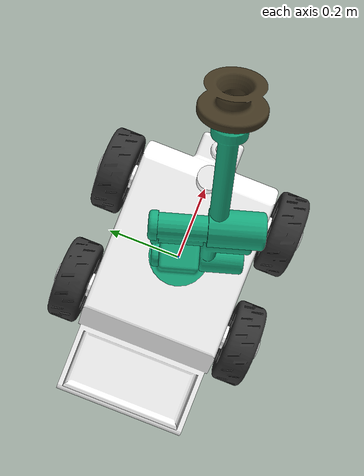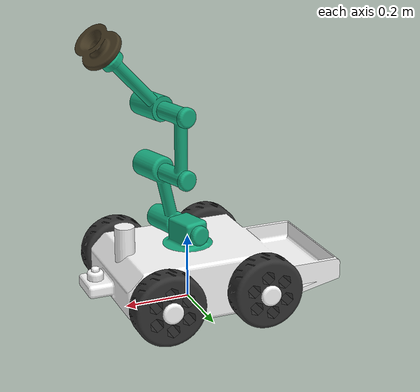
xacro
<?xml version="1.0" ?>
<robot
  name="mobile_manip" xmlns:xacro="http://ros.org/wiki/xacro">

  <xacro:macro name="body_color">
      <visual>
      <material>
          <ambient>0.792156862745098 0.819607843137255 0.933333333333333 1</ambient>
          <diffuse>0.792156862745098 0.819607843137255 0.933333333333333 1</diffuse>
          <specular>0.1 0.1 0.1 1</specular>
          <emissive>0 0 0 0</emissive>
      </material>
      </visual>
  </xacro:macro>

  <xacro:macro name="frwheel_color">
      <visual>
      <material>
          <ambient>0.2 0.2 0.2 1</ambient>
          <diffuse>0.2 0.2 0.2 1</diffuse>
          <specular>0.1 0.1 0.1 1</specular>
          <emissive>0 0 0 0</emissive>
      </material>
      </visual>
  </xacro:macro>

  <xacro:macro name="brwheel_color">
      <visual>
      <material>
          <ambient>0.2 0.2 0.2 1</ambient>
          <diffuse>0.2 0.2 0.2 1</diffuse>
          <specular>0.1 0.1 0.1 1</specular>
          <emissive>0 0 0 0</emissive>
      </material>
      </visual>
  </xacro:macro>

  <xacro:macro name="blwheel_color">
      <visual>
      <material>
          <ambient>0.2 0.2 0.2 1</ambient>
          <diffuse>0.2 0.2 0.2 1</diffuse>
          <specular>0.1 0.1 0.1 1</specular>
          <emissive>0 0 0 0</emissive>
      </material>
      </visual>
  </xacro:macro>

  <xacro:macro name="flwheel_color">
      <visual>
      <material>
          <ambient>0.2 0.2 0.2 1</ambient>
          <diffuse>0.2 0.2 0.2 1</diffuse>
          <specular>0.1 0.1 0.1 1</specular>
          <emissive>0 0 0 0</emissive>
      </material>
      </visual>
  </xacro:macro>

  <xacro:macro name="base_arm_color">
      <visual>
      <material>
          <ambient>0.0941 0.6706 0.4980 1</ambient>
          <diffuse>0.0941 0.6706 0.4980 1</diffuse>
          <specular>0.1 0.1 0.1 1</specular>
          <emissive>0 0 0 0</emissive>
      </material>
      </visual>
  </xacro:macro>

  <xacro:macro name="link1_color">
      <visual>
      <material>
          <ambient>0.0941 0.6706 0.4980 1</ambient>
          <diffuse>0.0941 0.6706 0.4980 1</diffuse>
          <specular>0.1 0.1 0.1 1</specular>
          <emissive>0 0 0 0</emissive>
      </material>
      </visual>
  </xacro:macro>

  <xacro:macro name="link2_color">
      <visual>
      <material>
          <ambient>0.0941 0.6706 0.4980 1</ambient>
          <diffuse>0.0941 0.6706 0.4980 1</diffuse>
          <specular>0.1 0.1 0.1 1</specular>
          <emissive>0 0 0 0</emissive>
      </material>
      </visual>
  </xacro:macro>

  <xacro:macro name="link3_color">
      <visual>
      <material>
          <ambient>0.0941 0.6706 0.4980 1</ambient>
          <diffuse>0.0941 0.6706 0.4980 1</diffuse>
          <specular>0.1 0.1 0.1 1</specular>
          <emissive>0 0 0 0</emissive>
      </material>
      </visual>
  </xacro:macro>

  <xacro:macro name="suction_color">
      <visual>
      <material>
          <ambient>0.255 0.213 0.128 1</ambient>
          <diffuse>0.255 0.213 0.128 1</diffuse>
          <specular>0.1 0.1 0.1 1</specular>
          <emissive>0 0 0 0</emissive>
      </material>
      </visual>
  </xacro:macro>
  # Add this before base link
  <link name="dummy_link"></link>

  <link
    name="base_link">
    <inertial>
      <origin
        xyz="-0.013174336678984 -2.17633575050336E-09 0.0870455763873143"
        rpy="0 0 0" />
      <mass
        value="32.5461542962152" />
      <inertia
        ixx="0.463492190555503"
        ixy="-1.93936130812376E-08"
        ixz="-0.00903178593568008"
        iyy="0.834237290117041"
        iyz="-5.21842055607698E-09"
        izz="1.14814029854843" />
    </inertial>
    <visual>
      <origin
        xyz="0 0 0"
        rpy="0 0 0" />
      <geometry>
        <mesh
          filename="package://mobile_manip/meshes/base_link.STL" />
      </geometry>
      <material
        name="">
        <color
          rgba="1 1 1 1" />
      </material>
    </visual>
    <collision>
      <origin
        xyz="0 0 0"
        rpy="0 0 0" />
      <geometry>
        <mesh
          filename="package://mobile_manip/meshes/base_link.STL" />
      </geometry>
    </collision>
  </link>

  # Add this after base link
  <joint name="dummy_joint" type="fixed">
      <origin rpy="0 0 0" xyz="0 0 0" />
      <parent link="dummy_link"/>
      <child link="base_link"/>
  </joint>
  <link name="laser_frame">
    <visual>
      <geometry>
          <cylinder radius="0.03" length="0.12"/>
      </geometry>
      <material name="white">
        <color rgba="1 1 1 1"/>
      </material>
    </visual>
    <collision>
      <geometry>
        <cylinder radius="0.01" length="0.1"/>
      </geometry>
    </collision>
  </link>

  <joint name="laser_joint" type="fixed">
        <parent link="base_link"/>
        <child link="laser_frame"/>
        <origin xyz= "0.2 0 0.2" rpy="0 0 0"/>
  </joint>

  <gazebo reference="laser_frame">
  <gravity>true</gravity>
  <sensor name="imu_sensor" type="imu">
    <always_on>true</always_on>
    <update_rate>100</update_rate>
    <visualize>true</visualize>
    <topic>__default_topic__</topic>
    <plugin filename="libgazebo_ros_imu_sensor.so" name="imu_plugin">
      <topicName>imu</topicName>
      <bodyName>base_link</bodyName>
      <updateRateHZ>10.0</updateRateHZ>
      <gaussianNoise>0.0</gaussianNoise>
      <xyzOffset>0 0 0</xyzOffset>
      <rpyOffset>0 0 0</rpyOffset>
      <frameName>base_link</frameName>
      <initialOrientationAsReference>false</initialOrientationAsReference>
    </plugin>
    <pose>0 0 0 0 0 0</pose>
  </sensor>
  </gazebo>

  <gazebo reference="laser_frame">
  <sensor name="lidar" type="ray">
    <pose>0.0 0.0 0.0 0 0 0</pose>
    <always_on>true</always_on>
    <visualize>true</visualize>
    <update_rate>5</update_rate>
    <ray>
      <scan>
        <horizontal>
          <samples>360</samples>
          <resolution>1.00000</resolution>
          <min_angle>0.000000</min_angle>
          <max_angle>6.280000</max_angle>
        </horizontal>
      </scan>
      <range>
        <min>0.120000</min>
        <max>4</max>
        <resolution>0.015000</resolution>
      </range>
      <noise>
        <type>gaussian</type>
        <mean>0.0</mean>
        <stddev>0.01</stddev>
      </noise>
    </ray>
    <plugin name="scan" filename="libgazebo_ros_ray_sensor.so">
      <ros>
        <remapping>~/out:=scan</remapping>
      </ros>
      <output_type>sensor_msgs/LaserScan</output_type>
      <frame_name>laser_frame</frame_name>
    </plugin>
  </sensor>
  </gazebo>

  <link
    name="fr_wheel_link">
    <inertial>
      <origin
        xyz="1.46795822768137E-05 -5.2013833787834E-06 0.0507751223652631"
        rpy="0 0 0" />
      <mass
        value="2.00738451500474" />
      <inertia
        ixx="0.0077129683034541"
        ixy="-1.06254497030913E-06"
        ixz="-5.97464556091312E-08"
        iyy="0.00771034875024998"
        iyz="6.62613662638713E-09"
        izz="0.0135355158684277" />
    </inertial>
    <visual>
      <origin
        xyz="0 0 0"
        rpy="0 0 0" />
      <geometry>
        <mesh
          filename="package://mobile_manip/meshes/fr_wheel_link.STL" />
      </geometry>
      <material
        name="">
        <color
          rgba="0.2 0.2 0.2 1" />
      </material>
    </visual>
    <collision>
      <origin
        xyz="0 0 0"
        rpy="0 0 0" />
      <geometry>
        <mesh
          filename="package://mobile_manip/meshes/fr_wheel_link.STL" />
      </geometry>
    </collision>
  </link>
  <joint
    name="fr_wheel_joint"
    type="continuous">
    <origin
      xyz="0.1524 0.2794 0.0889"
      rpy="1.5708 0 0" />
    <parent
      link="base_link" />
    <child
      link="fr_wheel_link" />
    <axis
      xyz="0 0 -1" />
    <limit
      effort="12"
      velocity="12" />
  </joint>
  <link
    name="br_wheel_link">
    <inertial>
      <origin
        xyz="1.38937602216782E-05 -7.03618886440521E-06 0.0507751223652588"
        rpy="0 0 0" />
      <mass
        value="2.00738451500512" />
      <inertia
        ixx="0.00771265588410991"
        ixy="-1.36007189593453E-06"
        ixz="-5.84082709869567E-08"
        iyy="0.00771066116958322"
        iyz="1.42133096427101E-08"
        izz="0.0135355158684164" />
    </inertial>
    <visual>
      <origin
        xyz="0 0 0"
        rpy="0 0 0" />
      <geometry>
        <mesh
          filename="package://mobile_manip/meshes/br_wheel_link.STL" />
      </geometry>
      <material
        name="">
        <color
          rgba="0.2 0.2 0.2 1" />
      </material>
    </visual>
    <collision>
      <origin
        xyz="0 0 0"
        rpy="0 0 0" />
      <geometry>
        <mesh
          filename="package://mobile_manip/meshes/br_wheel_link.STL" />
      </geometry>
    </collision>
  </link>
  <joint
    name="br_wheel_joint"
    type="continuous">
    <origin
      xyz="-0.1524 0.2794 0.0889"
      rpy="1.5708 0 0" />
    <parent
      link="base_link" />
    <child
      link="br_wheel_link" />
    <axis
      xyz="0 0 -1" />
    <limit
      effort="12"
      velocity="12" />
  </joint>
  <link
    name="bl_wheel_link">
    <inertial>
      <origin
        xyz="-1.48237771047388E-05 -4.77495101804115E-06 -0.050775122365263"
        rpy="0 0 0" />
      <mass
        value="2.00738451500474" />
      <inertia
        ixx="0.0077130275076627"
        ixy="9.85092940433789E-07"
        ixz="-5.99130018858183E-08"
        iyy="0.00771028954604139"
        iyz="-4.89661612324004E-09"
        izz="0.0135355158684277" />
    </inertial>
    <visual>
      <origin
        xyz="0 0 0"
        rpy="0 0 0" />
      <geometry>
        <mesh
          filename="package://mobile_manip/meshes/bl_wheel_link.STL" />
      </geometry>
      <material
        name="">
        <color
          rgba="0.2 0.2 0.2 1" />
      </material>
    </visual>
    <collision>
      <origin
        xyz="0 0 0"
        rpy="0 0 0" />
      <geometry>
        <mesh
          filename="package://mobile_manip/meshes/bl_wheel_link.STL" />
      </geometry>
    </collision>
  </link>
  <joint
    name="bl_wheel_joint"
    type="continuous">
    <origin
      xyz="-0.1524 -0.2794 0.0889"
      rpy="1.5708 0 0" />
    <parent
      link="base_link" />
    <child
      link="bl_wheel_link" />
    <axis
      xyz="0 0 1" />
    <limit
      effort="12"
      velocity="12" />
  </joint>
  <link
    name="fl_wheel_link">
    <inertial>
      <origin
        xyz="-1.26403967579958E-05 -9.09752126641156E-06 -0.0507751223652589"
        rpy="0 0 0" />
      <mass
        value="2.00738451500609" />
      <inertia
        ixx="0.00771219324820219"
        ixy="1.59955940323993E-06"
        ixz="-5.55123957864941E-08"
        iyy="0.00771112380549709"
        iyz="-2.3063354782184E-08"
        izz="0.0135355158684218" />
    </inertial>
    <visual>
      <origin
        xyz="0 0 0"
        rpy="0 0 0" />
      <geometry>
        <mesh
          filename="package://mobile_manip/meshes/fl_wheel_link.STL" />
      </geometry>
      <material
        name="">
        <color
          rgba="0.2 0.2 0.2 1" />
      </material>
    </visual>
    <collision>
      <origin
        xyz="0 0 0"
        rpy="0 0 0" />
      <geometry>
        <mesh
          filename="package://mobile_manip/meshes/fl_wheel_link.STL" />
      </geometry>
    </collision>
  </link>
  <joint
    name="fl_wheel_joint"
    type="continuous">
    <origin
      xyz="0.1524 -0.2794 0.0889"
      rpy="1.5708 0 0" />
    <parent
      link="base_link" />
    <child
      link="fl_wheel_link" />
    <axis
      xyz="0 0 1" />
    <limit
      effort="12"
      velocity="12" />
  </joint>
  <link
    name="base_arm_link">
    <inertial>
      <origin
        xyz="-1.38777878078145E-17 -1.38777878078145E-17 0.0138392328513056"
        rpy="0 0 0" />
      <mass
        value="0.890590697080434" />
      <inertia
        ixx="0.00179024878142422"
        ixy="2.95510178251609E-05"
        ixz="-1.65596973948845E-19"
        iyy="0.00170203915881994"
        iyz="-1.61452648344684E-19"
        izz="0.00187477236540139" />
    </inertial>
    <visual>
      <origin
        xyz="0 0 0"
        rpy="0 0 0" />
      <geometry>
        <mesh
          filename="package://mobile_manip/meshes/base_arm_link.STL" />
      </geometry>
      <material
        name="">
        <color
          rgba="0.0941 0.6706 0.4980 1" />
      </material>
    </visual>
    <collision>
      <origin
        xyz="0 0 0"
        rpy="0 0 0" />
      <geometry>
        <mesh
          filename="package://mobile_manip/meshes/base_arm_link.STL" />
      </geometry>
    </collision>
  </link>
  <joint
    name="base_arm_joint"
    type="revolute">
    <origin
      xyz="0 0 0.1778"
      rpy="0 0 0" />
    <parent
      link="base_link" />
    <child
      link="base_arm_link" />
    <axis
      xyz="0 0 -1" />
    <limit
      lower="-3.14"
      upper="3.14"
      effort="1000"
      velocity="1000" />
  </joint>
  <link
    name="link1_link">
    <inertial>
      <origin
        xyz="0.0261758251526831 0.102298704750442 0.140347838904677"
        rpy="0 0 0" />
      <mass
        value="1.47060490703815" />
      <inertia
        ixx="0.016961127410666"
        ixy="-0.00289829197081345"
        ixz="-0.000122507734106125"
        iyy="0.00637578643004957"
        iyz="-0.000478761357552717"
        izz="0.0129058159923818" />
    </inertial>
    <visual>
      <origin
        xyz="0 0 0"
        rpy="0 0 0" />
      <geometry>
        <mesh
          filename="package://mobile_manip/meshes/link1_link.STL" />
      </geometry>
      <material
        name="">
        <color
          rgba="0.0941 0.6706 0.4980 1" />
      </material>
    </visual>
    <collision>
      <origin
        xyz="0 0 0"
        rpy="0 0 0" />
      <geometry>
        <mesh
          filename="package://mobile_manip/meshes/link1_link.STL" />
      </geometry>
    </collision>
  </link>
  <joint
    name="link1_joint"
    type="revolute">
    <origin
      xyz="-0.0199494104244183 0.0656143080716115 0.0381000000000033"
      rpy="1.5707963267949 0 0.295159587889398" />
    <parent
      link="base_arm_link" />
    <child
      link="link1_link" />
    <axis
      xyz="0 0 -1" />
    <limit
      lower="-3.14"
      upper="3.14"
      effort="1000"
      velocity="1000" />
  </joint>
  <link
    name="link2_link">
    <inertial>
      <origin
        xyz="0.000157972169022195 0.0952502551238466 0.0555898299291898"
        rpy="0 0 0" />
      <mass
        value="0.385965013791146" />
      <inertia
        ixx="0.00262554563234254"
        ixy="-3.76717254923786E-06"
        ixz="-3.89058089694458E-09"
        iyy="0.000358082257072824"
        iyz="-1.201650944743E-08"
        izz="0.0024170210231749" />
    </inertial>
    <visual>
      <origin
        xyz="0 0 0"
        rpy="0 0 0" />
      <geometry>
        <mesh
          filename="package://mobile_manip/meshes/link2_link.STL" />
      </geometry>
      <material
        name="">
        <color
          rgba="0.0941 0.6706 0.4980 1" />
      </material>
    </visual>
    <collision>
      <origin
        xyz="0 0 0"
        rpy="0 0 0" />
      <geometry>
        <mesh
          filename="package://mobile_manip/meshes/link2_link.STL" />
      </geometry>
    </collision>
  </link>
  <joint
    name="link2_joint"
    type="revolute">
    <origin
      xyz="0.0472228948924485 0.184554187701001 0"
      rpy="0 0 0" />
    <parent
      link="link1_link" />
    <child
      link="link2_link" />
    <axis
      xyz="0 0 1" />
    <limit
      lower="-3,14"
      upper="3.14"
      effort="1000"
      velocity="1000" />
  </joint>
  <link
    name="link3_link">
    <inertial>
      <origin
        xyz="0.0371725334936419 0.0379622746552533 0.142857786663477"
        rpy="0 0 0" />
      <mass
        value="1.02787900847343" />
      <inertia
        ixx="0.0068353759433914"
        ixy="-0.00357463573112609"
        ixz="0.000151470603990453"
        iyy="0.00668508790919965"
        iyz="0.000154682011463008"
        izz="0.00769482037804941" />
    </inertial>
    <visual>
      <origin
        xyz="0 0 0"
        rpy="0 0 0" />
      <geometry>
        <mesh
          filename="package://mobile_manip/meshes/link3_link.STL" />
      </geometry>
      <material
        name="">
        <color
          rgba="0.0941 0.6706 0.4980 1" />
      </material>
    </visual>
    <collision>
      <origin
        xyz="0 0 0"
        rpy="0 0 0" />
      <geometry>
        <mesh
          filename="package://mobile_manip/meshes/link3_link.STL" />
      </geometry>
    </collision>
  </link>
  <joint
    name="link3_joint"
    type="revolute">
    <origin
      xyz="0.000316478712867722 0.190499737115897 0"
      rpy="0 0 0" />
    <parent
      link="link2_link" />
    <child
      link="link3_link" />
    <axis
      xyz="0 0 -1" />
    <limit
      lower="-3.14"
      upper="3.14"
      effort="1000"
      velocity="1000" />
  </joint>
  <link
    name="suction_link">
    <inertial>
      <origin
        xyz="0.0247433465969923 0.0252689217380735 -1.4745670073868E-08"
        rpy="0 0 0" />
      <mass
        value="0.317272192916042" />
      <inertia
        ixx="0.000435134778620283"
        ixy="8.90777010557611E-05"
        ixz="-5.72568346719955E-08"
        iyy="0.000438879780631664"
        iyz="5.62902825371822E-08"
        izz="0.000348149583311609" />
    </inertial>
    <visual>
      <origin
        xyz="0 0 0"
        rpy="0 0 0" />
      <geometry>
        <mesh
          filename="package://mobile_manip/meshes/suction_link.STL" />
      </geometry>
      <material
        name="">
        <color
          rgba="0.255 0.213 0.128 1" />
      </material>
    </visual>
    <collision>
      <origin
        xyz="0 0 0"
        rpy="0 0 0" />
      <geometry>
        <mesh
          filename="package://mobile_manip/meshes/suction_link.STL" />
      </geometry>
    </collision>
  </link>
  <joint
    name="suction_joint"
    type="revolute">
    <origin
      xyz="0.177707829255993 0.181482581591523 0.13715999999998"
      rpy="0 0 0" />
    <parent
      link="link3_link" />
    <child
      link="suction_link" />
    <axis
      xyz="1 0 0" />
    <limit
      lower="0.0"
      upper="0.01"
      effort="1000"
      velocity="1000" />
  </joint>

  <gazebo>
    <plugin name='vacuum_gripper' filename='libgazebo_ros_vacuum_gripper.so'>

      <!-- This part can be commented out if not required -->

      <!-- Link associated with gripper -->
      <link_name>suction_link</link_name>

      <!-- Max distance to attract entities -->
      <max_distance>10.0</max_distance>

      <!-- List of entities to be not attracted by the gripper -->
      <fixed>ground_plane</fixed>
      <fixed>wall</fixed>
    </plugin>
  </gazebo>

  <gazebo reference="base_link">
    <xacro:body_color />
  </gazebo>
  <gazebo reference="fr_wheel_link">
      <xacro:flwheel_color />
  </gazebo>
  <gazebo reference="br_wheel_link">
      <xacro:brwheel_color />
  </gazebo>
  <gazebo reference="bl_wheel_link">
      <xacro:blwheel_color />
  </gazebo>
  <gazebo reference="fl_wheel_link">
      <xacro:flwheel_color />
  </gazebo>
  <gazebo reference="base_arm_link">
      <xacro:base_arm_color />
  </gazebo>
  <gazebo reference="link1_link">
      <xacro:link1_color />
  </gazebo>
  <gazebo reference="link2_link">
      <xacro:link2_color />
  </gazebo>
  <gazebo reference="link3_link">
      <xacro:link3_color />
  </gazebo>
  <gazebo reference="suction_link">
      <xacro:suction_color />
  </gazebo>
   <ros2_control name="GazeboSystem" type="system">
 <hardware>
     <plugin>gazebo_ros2_control/GazeboSystem</plugin>
 </hardware>
 # Velocity Controllers

 <joint name="fr_wheel_joint">
     <command_interface name="velocity">
         <param name="min">-1000.0</param>
         <param name="max">1000.0</param>
     </command_interface>
     <state_interface name="position"/>
     <state_interface name="velocity"/>
 </joint>

 <joint name="br_wheel_joint">
     <command_interface name="velocity">
         <param name="min">-1000.0</param>
         <param name="max">1000.0</param>
     </command_interface>
     <state_interface name="position"/>
     <state_interface name="velocity"/>
 </joint>

 <joint name="fl_wheel_joint">
     <command_interface name="velocity">
         <param name="min">-1000.0</param>
         <param name="max">1000.0</param>
     </command_interface>
     <state_interface name="position"/>
     <state_interface name="velocity"/>
 </joint>

 <joint name="bl_wheel_joint">
     <command_interface name="velocity">
         <param name="min">-1000.0</param>
         <param name="max">1000.0</param>
     </command_interface>
     <state_interface name="position"/>
     <state_interface name="velocity"/>
 </joint>

# Position Controller
 <joint name="base_arm_joint">
     <command_interface name="position">
         <param name="min">-3.14</param>
         <param name="max">3.14</param>
     </command_interface>
     <state_interface name="position"/>
     <state_interface name="velocity"/>
 </joint>

 <joint name="base_arm_joint">
     <command_interface name="velocity">
         <param name="min">-1000.0</param>
         <param name="max">1000.0</param>
     </command_interface>
     <state_interface name="position"/>
     <state_interface name="velocity"/>
 </joint>

 <joint name="link1_joint">
     <command_interface name="position">
         <param name="min">-3.14</param>
         <param name="max">3.14</param>
     </command_interface>
     <state_interface name="position"/>
     <state_interface name="velocity"/>
 </joint>

 <joint name="link1_joint">
     <command_interface name="velocity">
         <param name="min">-1000.0</param>
         <param name="max">1000.0</param>
     </command_interface>
     <state_interface name="position"/>
     <state_interface name="velocity"/>
 </joint>

 <joint name="link2_joint">
     <command_interface name="position">
         <param name="min">-3.14</param>
         <param name="max">3.14</param>
     </command_interface>
     <state_interface name="position"/>
     <state_interface name="velocity"/>
 </joint>

 <joint name="link2_joint">
     <command_interface name="velocity">
         <param name="min">-1000.0</param>
         <param name="max">1000.0</param>
     </command_interface>
     <state_interface name="position"/>
     <state_interface name="velocity"/>
 </joint>

 <joint name="link3_joint">
     <command_interface name="position">
         <param name="min">-3.14</param>
         <param name="max">3.14</param>
     </command_interface>
     <state_interface name="position"/>
     <state_interface name="velocity"/>
 </joint>

 <joint name="link3_joint">
     <command_interface name="velocity">
         <param name="min">-1000.0</param>
         <param name="max">1000.0</param>
     </command_interface>
     <state_interface name="position"/>
     <state_interface name="velocity"/>
 </joint>

 <joint name="suction_joint">
     <command_interface name="position">
         <param name="min">0.0</param>
         <param name="max">0.01</param>
     </command_interface>
     <state_interface name="position"/>
     <state_interface name="velocity"/>
 </joint>

 <joint name="suction_joint">
     <command_interface name="velocity">
         <param name="min">-1000.0</param>
         <param name="max">1000.0</param>
     </command_interface>
     <state_interface name="position"/>
     <state_interface name="velocity"/>
 </joint>
 </ros2_control>
 <gazebo>
    <plugin filename="libgazebo_ros2_control.so" name="gazebo_ros2_control">
        <parameters>$(find mobile_manip)/config/control.yaml</parameters>
    </plugin>
</gazebo>
</robot>
